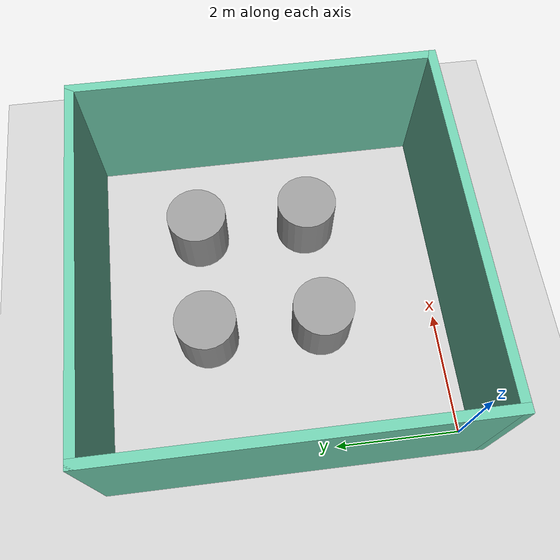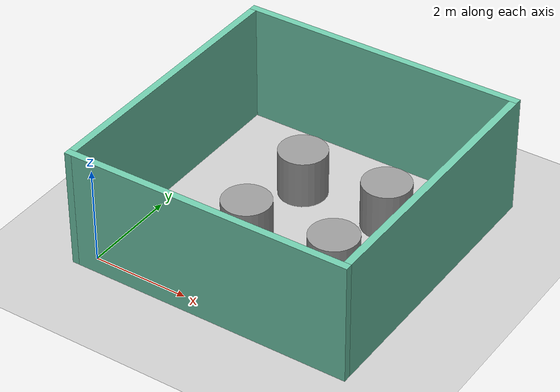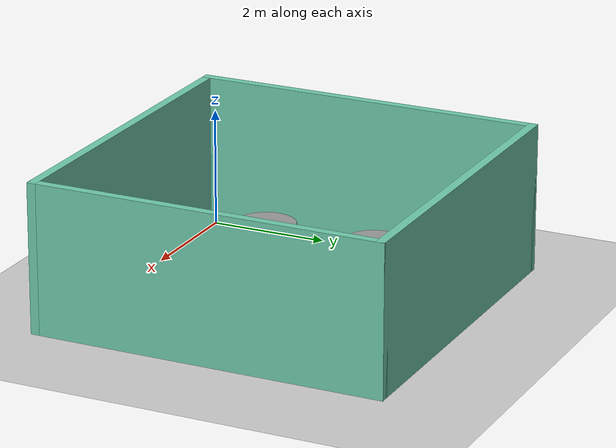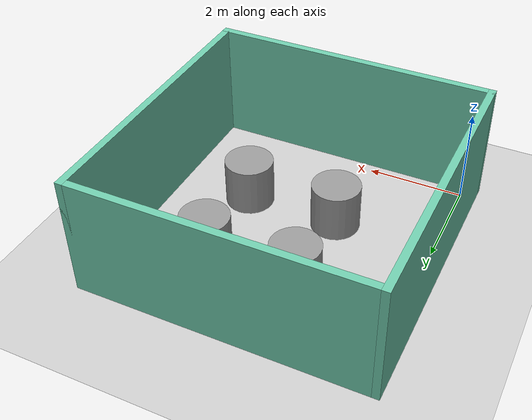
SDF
<sdf version="1.7">
 <world name="default">
  <light name="sun" type="directional">
   <pose>0 0 10 0 -0 0</pose>
   <diffuse>0.8 0.8 0.8 1</diffuse>
   <specular>0.2 0.2 0.2 1</specular>
   <attenuation>
    <range>1000</range>
    <constant>0.9</constant>
    <linear>0.01</linear>
    <quadratic>0.001</quadratic>
   </attenuation>
   <direction>-0.5 0.1 -0.9</direction>
   <spot><inner_angle>0</inner_angle><outer_angle>0</outer_angle><falloff>0</falloff></spot>
  </light>
  <model name="ground_plane">
   <static>1</static>
   <link name="link">
    <collision name="collision">
     <geometry><plane><normal>0 0 1</normal><size>100 100</size></plane></geometry>
     <surface>
      <contact><collide_bitmask>65535</collide_bitmask></contact>
      <friction><ode><mu>100</mu><mu2>50</mu2></ode></friction>
     </surface>
    </collision>
    <visual name="visual">
     <cast_shadows>0</cast_shadows>
     <geometry><plane><normal>0 0 1</normal><size>100 100</size></plane></geometry>
     <material>
      <script><uri>file://media/materials/scripts/gazebo.material</uri><name>Gazebo/Grey</name></script>
     </material>
    </visual>
   </link>
  </model>
  <gravity>0 0 -9.8</gravity>
  <magnetic_field>6e-06 2.3e-05 -4.2e-05</magnetic_field>
  <atmosphere type="adiabatic"/>
  <physics type="ode">
   <max_step_size>0.001</max_step_size>
   <real_time_factor>1</real_time_factor>
   <real_time_update_rate>1000</real_time_update_rate>
  </physics>
  <scene><ambient>0.4 0.4 0.4 1</ambient><background>0.7 0.7 0.7 1</background><shadows>1</shadows></scene>
  <spherical_coordinates>
   <surface_model>EARTH_WGS84</surface_model>
   <latitude_deg>0</latitude_deg>
   <longitude_deg>0</longitude_deg>
   <elevation>0</elevation>
   <heading_deg>0</heading_deg>
  </spherical_coordinates>
  <model name="1">
   <pose>4.19516 2.6709 0 0 -0 0</pose>
   <link name="Wall_26">
    <collision name="Wall_26_Collision">
     <geometry><box><size>6 0.15 2.5</size></box></geometry>
     <pose>0 0 1.25 0 -0 0</pose>
    </collision>
    <visual name="Wall_26_Visual">
     <pose>0 0 1.25 0 -0 0</pose>
     <geometry><box><size>6 0.15 2.5</size></box></geometry>
     <material>
      <script><uri>file://media/materials/scripts/gazebo.material</uri><name>Gazebo/Grey</name></script>
      <ambient>0.435294 0.796078 0.67451 1</ambient>
     </material>
     <meta><layer>0</layer></meta>
    </visual>
    <pose>-4.4397 0 0 0 -0 1.5708</pose>
   </link>
   <link name="Wall_27">
    <collision name="Wall_27_Collision">
     <geometry><box><size>6 0.15 2.5</size></box></geometry>
     <pose>0 0 1.25 0 -0 0</pose>
    </collision>
    <visual name="Wall_27_Visual">
     <pose>0 0 1.25 0 -0 0</pose>
     <geometry><box><size>6 0.15 2.5</size></box></geometry>
     <material>
      <script><uri>file://media/materials/scripts/gazebo.material</uri><name>Gazebo/Grey</name></script>
      <ambient>0.435294 0.796078 0.67451 1</ambient>
     </material>
     <meta><layer>0</layer></meta>
    </visual>
    <pose>-1.5147 2.925 0 0 -0 0</pose>
   </link>
   <link name="Wall_28">
    <collision name="Wall_28_Collision">
     <geometry><box><size>6 0.15 2.5</size></box></geometry>
     <pose>0 0 1.25 0 -0 0</pose>
    </collision>
    <visual name="Wall_28_Visual">
     <pose>0 0 1.25 0 -0 0</pose>
     <geometry><box><size>6 0.15 2.5</size></box></geometry>
     <material>
      <script><uri>file://media/materials/scripts/gazebo.material</uri><name>Gazebo/Grey</name></script>
      <ambient>0.435294 0.796078 0.67451 1</ambient>
     </material>
     <meta><layer>0</layer></meta>
    </visual>
    <pose>1.4103 0 0 0 -0 -1.5708</pose>
   </link>
   <link name="Wall_29">
    <collision name="Wall_29_Collision">
     <geometry><box><size>6 0.15 2.5</size></box></geometry>
     <pose>0 0 1.25 0 -0 0</pose>
    </collision>
    <visual name="Wall_29_Visual">
     <pose>0 0 1.25 0 -0 0</pose>
     <geometry><box><size>6 0.15 2.5</size></box></geometry>
     <material>
      <script><uri>file://media/materials/scripts/gazebo.material</uri><name>Gazebo/Grey</name></script>
      <ambient>0.435294 0.796078 0.67451 1</ambient>
     </material>
     <meta><layer>0</layer></meta>
    </visual>
    <pose>-1.5147 -2.925 0 0 -0 3.14159</pose>
   </link>
   <static>1</static>
  </model>
  <model name="unit_cylinder">
   <pose>3.93316 3.85639 0.499996 2e-06 -0 0</pose>
   <link name="link">
    <inertial>
     <mass>1</mass>
     <inertia><ixx>0.145833</ixx><ixy>0</ixy><ixz>0</ixz><iyy>0.145833</iyy><iyz>0</iyz><izz>0.125</izz></inertia>
    </inertial>
    <collision name="collision">
     <geometry><cylinder><radius>0.5</radius><length>1</length></cylinder></geometry>
    </collision>
    <visual name="visual">
     <geometry><cylinder><radius>0.5</radius><length>1</length></cylinder></geometry>
     <material>
      <script><name>Gazebo/Grey</name><uri>file://media/materials/scripts/gazebo.material</uri></script>
     </material>
    </visual>
   </link>
  </model>
  <model name="unit_cylinder_0">
   <pose>3.96805 1.9643 0.499994 -2e-06 -1e-06 0</pose>
   <link name="link">
    <inertial>
     <mass>1</mass>
     <inertia><ixx>0.145833</ixx><ixy>0</ixy><ixz>0</ixz><iyy>0.145833</iyy><iyz>0</iyz><izz>0.125</izz></inertia>
    </inertial>
    <collision name="collision">
     <geometry><cylinder><radius>0.5</radius><length>1</length></cylinder></geometry>
    </collision>
    <visual name="visual">
     <geometry><cylinder><radius>0.5</radius><length>1</length></cylinder></geometry>
     <material>
      <script><name>Gazebo/Grey</name><uri>file://media/materials/scripts/gazebo.material</uri></script>
     </material>
    </visual>
   </link>
  </model>
  <model name="unit_cylinder_1">
   <pose>2.04614 1.95226 0.499994 -2e-06 -1e-06 0</pose>
   <link name="link">
    <inertial>
     <mass>1</mass>
     <inertia><ixx>0.145833</ixx><ixy>0</ixy><ixz>0</ixz><iyy>0.145833</iyy><iyz>0</iyz><izz>0.125</izz></inertia>
    </inertial>
    <collision name="collision">
     <geometry><cylinder><radius>0.5</radius><length>1</length></cylinder></geometry>
    </collision>
    <visual name="visual">
     <geometry><cylinder><radius>0.5</radius><length>1</length></cylinder></geometry>
     <material>
      <script><name>Gazebo/Grey</name><uri>file://media/materials/scripts/gazebo.material</uri></script>
     </material>
    </visual>
   </link>
  </model>
  <model name="unit_cylinder_2">
   <pose>2.0435 3.86158 0.499996 3e-06 1e-06 -0</pose>
   <link name="link">
    <inertial>
     <mass>1</mass>
     <inertia><ixx>0.145833</ixx><ixy>0</ixy><ixz>0</ixz><iyy>0.145833</iyy><iyz>0</iyz><izz>0.125</izz></inertia>
    </inertial>
    <collision name="collision">
     <geometry><cylinder><radius>0.5</radius><length>1</length></cylinder></geometry>
    </collision>
    <visual name="visual">
     <geometry><cylinder><radius>0.5</radius><length>1</length></cylinder></geometry>
     <material>
      <script><name>Gazebo/Grey</name><uri>file://media/materials/scripts/gazebo.material</uri></script>
     </material>
    </visual>
   </link>
  </model>
 </world>
</sdf>
